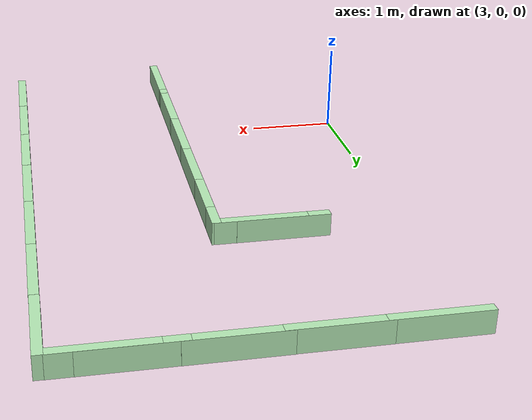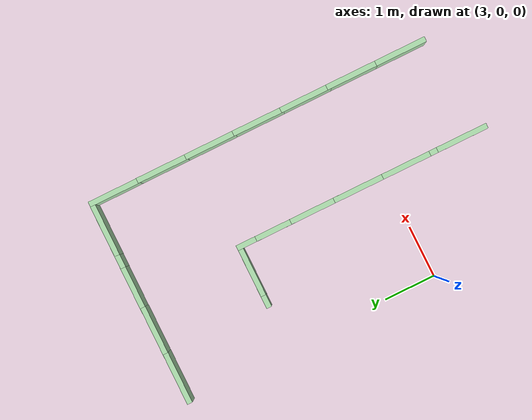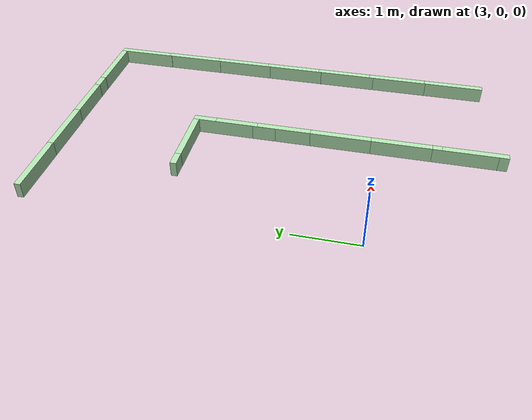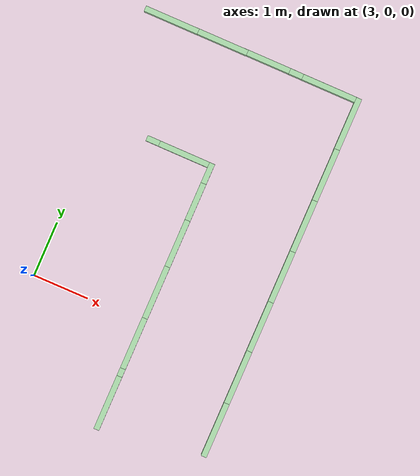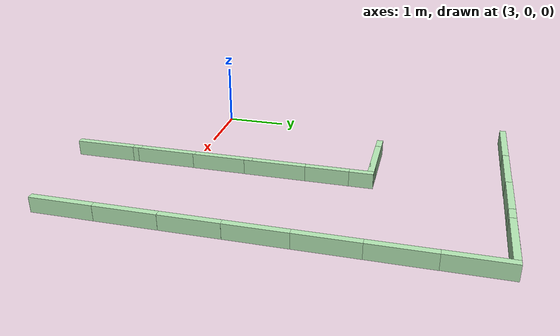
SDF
<sdf version="1.6">
 <world name="default">
  <model name="wall_100_25h_1_clone_7_clone_clone_0">
   <link name="link">
    <inertial>
     <mass>1</mass>
     <inertia>
      <ixx>0.166667</ixx>
      <ixy>0</ixy>
      <ixz>0</ixz>
      <iyy>0.166667</iyy>
      <iyz>0</iyz>
      <izz>0.166667</izz>
     </inertia>
    </inertial>
    <visual name="visual">
     <geometry><box><size>1 0.1 0.25</size></box></geometry>
     <material>
      <script><name>Gazebo/Grey</name><uri>file://media/materials/scripts/gazebo.material</uri></script>
      <ambient>0.3 0.5 0.3 1</ambient>
      <diffuse>0.7 0.9 0.7 1</diffuse>
      <specular>0.01 0.02 0.01 1</specular>
      <emissive>0 0 0 1</emissive>
      <lighting>1</lighting>
      <shader type="vertex"><normal_map>__default__</normal_map></shader>
     </material>
    </visual>
    <collision name="collision">
     <geometry><box><size>1 0.1 0.25</size></box></geometry>
     <surface>
      <friction>
       <ode><mu>1</mu><mu2>1</mu2><fdir1>0 0 0</fdir1><slip1>0</slip1><slip2>0</slip2></ode>
       <torsional>
        <coefficient>1</coefficient>
        <patch_radius>0</patch_radius>
        <surface_radius>0</surface_radius>
        <use_patch_radius>1</use_patch_radius>
        <ode><slip>0</slip></ode>
       </torsional>
      </friction>
      <bounce><restitution_coefficient>0</restitution_coefficient><threshold>1e+06</threshold></bounce>
      <contact>
       <collide_without_contact>0</collide_without_contact>
       <collide_without_contact_bitmask>1</collide_without_contact_bitmask>
       <collide_bitmask>1</collide_bitmask>
       <ode>
        <soft_cfm>0</soft_cfm>
        <soft_erp>0.2</soft_erp>
        <kp>1e+13</kp>
        <kd>1</kd>
        <max_vel>0.01</max_vel>
        <min_depth>0</min_depth>
       </ode>
       <bullet>
        <split_impulse>1</split_impulse>
        <split_impulse_penetration_threshold>-0.01</split_impulse_penetration_threshold>
        <soft_cfm>0</soft_cfm>
        <soft_erp>0.2</soft_erp>
        <kp>1e+13</kp>
        <kd>1</kd>
       </bullet>
      </contact>
     </surface>
    </collision>
   </link>
   <static>1</static>
   <pose>4.34397 2.95535 0.125 0.000404 -0 0</pose>
  </model>
  <model name="wall_100_25h_1_clone_9_clone_clone_0_clone_2_clone_clone_1">
   <link name="link">
    <inertial>
     <mass>1</mass>
     <inertia>
      <ixx>0.166667</ixx>
      <ixy>0</ixy>
      <ixz>0</ixz>
      <iyy>0.166667</iyy>
      <iyz>0</iyz>
      <izz>0.166667</izz>
     </inertia>
    </inertial>
    <visual name="visual">
     <geometry><box><size>1 0.1 0.25</size></box></geometry>
     <material>
      <script><name>Gazebo/Grey</name><uri>file://media/materials/scripts/gazebo.material</uri></script>
      <ambient>0.3 0.5 0.3 1</ambient>
      <diffuse>0.7 0.9 0.7 1</diffuse>
      <specular>0.01 0.02 0.01 1</specular>
      <emissive>0 0 0 1</emissive>
      <lighting>1</lighting>
      <shader type="vertex"><normal_map>__default__</normal_map></shader>
     </material>
    </visual>
    <collision name="collision">
     <geometry><box><size>1 0.1 0.25</size></box></geometry>
     <surface>
      <friction>
       <ode><mu>1</mu><mu2>1</mu2><fdir1>0 0 0</fdir1><slip1>0</slip1><slip2>0</slip2></ode>
       <torsional>
        <coefficient>1</coefficient>
        <patch_radius>0</patch_radius>
        <surface_radius>0</surface_radius>
        <use_patch_radius>1</use_patch_radius>
        <ode><slip>0</slip></ode>
       </torsional>
      </friction>
      <bounce><restitution_coefficient>0</restitution_coefficient><threshold>1e+06</threshold></bounce>
      <contact>
       <collide_without_contact>0</collide_without_contact>
       <collide_without_contact_bitmask>1</collide_without_contact_bitmask>
       <collide_bitmask>1</collide_bitmask>
       <ode>
        <soft_cfm>0</soft_cfm>
        <soft_erp>0.2</soft_erp>
        <kp>1e+13</kp>
        <kd>1</kd>
        <max_vel>0.01</max_vel>
        <min_depth>0</min_depth>
       </ode>
       <bullet>
        <split_impulse>1</split_impulse>
        <split_impulse_penetration_threshold>-0.01</split_impulse_penetration_threshold>
        <soft_cfm>0</soft_cfm>
        <soft_erp>0.2</soft_erp>
        <kp>1e+13</kp>
        <kd>1</kd>
       </bullet>
      </contact>
     </surface>
    </collision>
   </link>
   <static>1</static>
   <pose>5.05543 0.558635 0.125 0 0.000404 -1.57111</pose>
  </model>
  <model name="wall_100_25h_1_clone_9_clone_clone_0_clone_2_clone_clone_2">
   <link name="link">
    <inertial>
     <mass>1</mass>
     <inertia>
      <ixx>0.166667</ixx>
      <ixy>0</ixy>
      <ixz>0</ixz>
      <iyy>0.166667</iyy>
      <iyz>0</iyz>
      <izz>0.166667</izz>
     </inertia>
    </inertial>
    <visual name="visual">
     <geometry><box><size>1 0.1 0.25</size></box></geometry>
     <material>
      <script><name>Gazebo/Grey</name><uri>file://media/materials/scripts/gazebo.material</uri></script>
      <ambient>0.3 0.5 0.3 1</ambient>
      <diffuse>0.7 0.9 0.7 1</diffuse>
      <specular>0.01 0.02 0.01 1</specular>
      <emissive>0 0 0 1</emissive>
      <lighting>1</lighting>
      <shader type="vertex"><normal_map>__default__</normal_map></shader>
     </material>
    </visual>
    <collision name="collision">
     <geometry><box><size>1 0.1 0.25</size></box></geometry>
     <surface>
      <friction>
       <ode><mu>1</mu><mu2>1</mu2><fdir1>0 0 0</fdir1><slip1>0</slip1><slip2>0</slip2></ode>
       <torsional>
        <coefficient>1</coefficient>
        <patch_radius>0</patch_radius>
        <surface_radius>0</surface_radius>
        <use_patch_radius>1</use_patch_radius>
        <ode><slip>0</slip></ode>
       </torsional>
      </friction>
      <bounce><restitution_coefficient>0</restitution_coefficient><threshold>1e+06</threshold></bounce>
      <contact>
       <collide_without_contact>0</collide_without_contact>
       <collide_without_contact_bitmask>1</collide_without_contact_bitmask>
       <collide_bitmask>1</collide_bitmask>
       <ode>
        <soft_cfm>0</soft_cfm>
        <soft_erp>0.2</soft_erp>
        <kp>1e+13</kp>
        <kd>1</kd>
        <max_vel>0.01</max_vel>
        <min_depth>0</min_depth>
       </ode>
       <bullet>
        <split_impulse>1</split_impulse>
        <split_impulse_penetration_threshold>-0.01</split_impulse_penetration_threshold>
        <soft_cfm>0</soft_cfm>
        <soft_erp>0.2</soft_erp>
        <kp>1e+13</kp>
        <kd>1</kd>
       </bullet>
      </contact>
     </surface>
    </collision>
   </link>
   <static>1</static>
   <pose>5.05417 -0.411563 0.125 0 0.000404 -1.57111</pose>
  </model>
  <model name="wall_100_25h_1_clone_9_clone_clone_0_clone_2_clone_clone_3">
   <link name="link">
    <inertial>
     <mass>1</mass>
     <inertia>
      <ixx>0.166667</ixx>
      <ixy>0</ixy>
      <ixz>0</ixz>
      <iyy>0.166667</iyy>
      <iyz>0</iyz>
      <izz>0.166667</izz>
     </inertia>
    </inertial>
    <visual name="visual">
     <geometry><box><size>1 0.1 0.25</size></box></geometry>
     <material>
      <script><name>Gazebo/Grey</name><uri>file://media/materials/scripts/gazebo.material</uri></script>
      <ambient>0.3 0.5 0.3 1</ambient>
      <diffuse>0.7 0.9 0.7 1</diffuse>
      <specular>0.01 0.02 0.01 1</specular>
      <emissive>0 0 0 1</emissive>
      <lighting>1</lighting>
      <shader type="vertex"><normal_map>__default__</normal_map></shader>
     </material>
    </visual>
    <collision name="collision">
     <geometry><box><size>1 0.1 0.25</size></box></geometry>
     <surface>
      <friction>
       <ode><mu>1</mu><mu2>1</mu2><fdir1>0 0 0</fdir1><slip1>0</slip1><slip2>0</slip2></ode>
       <torsional>
        <coefficient>1</coefficient>
        <patch_radius>0</patch_radius>
        <surface_radius>0</surface_radius>
        <use_patch_radius>1</use_patch_radius>
        <ode><slip>0</slip></ode>
       </torsional>
      </friction>
      <bounce><restitution_coefficient>0</restitution_coefficient><threshold>1e+06</threshold></bounce>
      <contact>
       <collide_without_contact>0</collide_without_contact>
       <collide_without_contact_bitmask>1</collide_without_contact_bitmask>
       <collide_bitmask>1</collide_bitmask>
       <ode>
        <soft_cfm>0</soft_cfm>
        <soft_erp>0.2</soft_erp>
        <kp>1e+13</kp>
        <kd>1</kd>
        <max_vel>0.01</max_vel>
        <min_depth>0</min_depth>
       </ode>
       <bullet>
        <split_impulse>1</split_impulse>
        <split_impulse_penetration_threshold>-0.01</split_impulse_penetration_threshold>
        <soft_cfm>0</soft_cfm>
        <soft_erp>0.2</soft_erp>
        <kp>1e+13</kp>
        <kd>1</kd>
       </bullet>
      </contact>
     </surface>
    </collision>
   </link>
   <static>1</static>
   <pose>5.05346 -1.35987 0.125 0 0.000404 -1.57111</pose>
  </model>
  <model name="wall_100_25h_1_clone_9_clone_clone_0_clone_2_clone_clone_4">
   <link name="link">
    <inertial>
     <mass>1</mass>
     <inertia>
      <ixx>0.166667</ixx>
      <ixy>0</ixy>
      <ixz>0</ixz>
      <iyy>0.166667</iyy>
      <iyz>0</iyz>
      <izz>0.166667</izz>
     </inertia>
    </inertial>
    <visual name="visual">
     <geometry><box><size>1 0.1 0.25</size></box></geometry>
     <material>
      <script><name>Gazebo/Grey</name><uri>file://media/materials/scripts/gazebo.material</uri></script>
      <ambient>0.3 0.5 0.3 1</ambient>
      <diffuse>0.7 0.9 0.7 1</diffuse>
      <specular>0.01 0.02 0.01 1</specular>
      <emissive>0 0 0 1</emissive>
      <lighting>1</lighting>
      <shader type="vertex"><normal_map>__default__</normal_map></shader>
     </material>
    </visual>
    <collision name="collision">
     <geometry><box><size>1 0.1 0.25</size></box></geometry>
     <surface>
      <friction>
       <ode><mu>1</mu><mu2>1</mu2><fdir1>0 0 0</fdir1><slip1>0</slip1><slip2>0</slip2></ode>
       <torsional>
        <coefficient>1</coefficient>
        <patch_radius>0</patch_radius>
        <surface_radius>0</surface_radius>
        <use_patch_radius>1</use_patch_radius>
        <ode><slip>0</slip></ode>
       </torsional>
      </friction>
      <bounce><restitution_coefficient>0</restitution_coefficient><threshold>1e+06</threshold></bounce>
      <contact>
       <collide_without_contact>0</collide_without_contact>
       <collide_without_contact_bitmask>1</collide_without_contact_bitmask>
       <collide_bitmask>1</collide_bitmask>
       <ode>
        <soft_cfm>0</soft_cfm>
        <soft_erp>0.2</soft_erp>
        <kp>1e+13</kp>
        <kd>1</kd>
        <max_vel>0.01</max_vel>
        <min_depth>0</min_depth>
       </ode>
       <bullet>
        <split_impulse>1</split_impulse>
        <split_impulse_penetration_threshold>-0.01</split_impulse_penetration_threshold>
        <soft_cfm>0</soft_cfm>
        <soft_erp>0.2</soft_erp>
        <kp>1e+13</kp>
        <kd>1</kd>
       </bullet>
      </contact>
     </surface>
    </collision>
   </link>
   <static>1</static>
   <pose>5.05361 -1.5074 0.125 0 0.000404 -1.57111</pose>
  </model>
  <model name="wall_100_25h_1_clone_9_clone_clone_0_clone_2_clone_clone_1_clone">
   <link name="link">
    <inertial>
     <mass>1</mass>
     <inertia>
      <ixx>0.166667</ixx>
      <ixy>0</ixy>
      <ixz>0</ixz>
      <iyy>0.166667</iyy>
      <iyz>0</iyz>
      <izz>0.166667</izz>
     </inertia>
    </inertial>
    <visual name="visual">
     <geometry><box><size>1 0.1 0.25</size></box></geometry>
     <material>
      <script><name>Gazebo/Grey</name><uri>file://media/materials/scripts/gazebo.material</uri></script>
      <ambient>0.3 0.5 0.3 1</ambient>
      <diffuse>0.7 0.9 0.7 1</diffuse>
      <specular>0.01 0.02 0.01 1</specular>
      <emissive>0 0 0 1</emissive>
      <lighting>1</lighting>
      <shader type="vertex"><normal_map>__default__</normal_map></shader>
     </material>
    </visual>
    <collision name="collision">
     <geometry><box><size>1 0.1 0.25</size></box></geometry>
     <surface>
      <friction>
       <ode><mu>1</mu><mu2>1</mu2><fdir1>0 0 0</fdir1><slip1>0</slip1><slip2>0</slip2></ode>
       <torsional>
        <coefficient>1</coefficient>
        <patch_radius>0</patch_radius>
        <surface_radius>0</surface_radius>
        <use_patch_radius>1</use_patch_radius>
        <ode><slip>0</slip></ode>
       </torsional>
      </friction>
      <bounce><restitution_coefficient>0</restitution_coefficient><threshold>1e+06</threshold></bounce>
      <contact>
       <collide_without_contact>0</collide_without_contact>
       <collide_without_contact_bitmask>1</collide_without_contact_bitmask>
       <collide_bitmask>1</collide_bitmask>
       <ode>
        <soft_cfm>0</soft_cfm>
        <soft_erp>0.2</soft_erp>
        <kp>1e+13</kp>
        <kd>1</kd>
        <max_vel>0.01</max_vel>
        <min_depth>0</min_depth>
       </ode>
       <bullet>
        <split_impulse>1</split_impulse>
        <split_impulse_penetration_threshold>-0.01</split_impulse_penetration_threshold>
        <soft_cfm>0</soft_cfm>
        <soft_erp>0.2</soft_erp>
        <kp>1e+13</kp>
        <kd>1</kd>
       </bullet>
      </contact>
     </surface>
    </collision>
   </link>
   <static>1</static>
   <pose>5.05685 1.43097 0.125 0 0.000404 -1.57111</pose>
  </model>
  <model name="wall_100_25h_1_clone_9_clone_clone_0_clone_2_clone_clone_1_clone_0">
   <link name="link">
    <inertial>
     <mass>1</mass>
     <inertia>
      <ixx>0.166667</ixx>
      <ixy>0</ixy>
      <ixz>0</ixz>
      <iyy>0.166667</iyy>
      <iyz>0</iyz>
      <izz>0.166667</izz>
     </inertia>
    </inertial>
    <visual name="visual">
     <geometry><box><size>1 0.1 0.25</size></box></geometry>
     <material>
      <script><name>Gazebo/Grey</name><uri>file://media/materials/scripts/gazebo.material</uri></script>
      <ambient>0.3 0.5 0.3 1</ambient>
      <diffuse>0.7 0.9 0.7 1</diffuse>
      <specular>0.01 0.02 0.01 1</specular>
      <emissive>0 0 0 1</emissive>
      <lighting>1</lighting>
      <shader type="vertex"><normal_map>__default__</normal_map></shader>
     </material>
    </visual>
    <collision name="collision">
     <geometry><box><size>1 0.1 0.25</size></box></geometry>
     <surface>
      <friction>
       <ode><mu>1</mu><mu2>1</mu2><fdir1>0 0 0</fdir1><slip1>0</slip1><slip2>0</slip2></ode>
       <torsional>
        <coefficient>1</coefficient>
        <patch_radius>0</patch_radius>
        <surface_radius>0</surface_radius>
        <use_patch_radius>1</use_patch_radius>
        <ode><slip>0</slip></ode>
       </torsional>
      </friction>
      <bounce><restitution_coefficient>0</restitution_coefficient><threshold>1e+06</threshold></bounce>
      <contact>
       <collide_without_contact>0</collide_without_contact>
       <collide_without_contact_bitmask>1</collide_without_contact_bitmask>
       <collide_bitmask>1</collide_bitmask>
       <ode>
        <soft_cfm>0</soft_cfm>
        <soft_erp>0.2</soft_erp>
        <kp>1e+13</kp>
        <kd>1</kd>
        <max_vel>0.01</max_vel>
        <min_depth>0</min_depth>
       </ode>
       <bullet>
        <split_impulse>1</split_impulse>
        <split_impulse_penetration_threshold>-0.01</split_impulse_penetration_threshold>
        <soft_cfm>0</soft_cfm>
        <soft_erp>0.2</soft_erp>
        <kp>1e+13</kp>
        <kd>1</kd>
       </bullet>
      </contact>
     </surface>
    </collision>
   </link>
   <static>1</static>
   <pose>5.05616 2.12575 0.125 0 0.000404 -1.57111</pose>
  </model>
  <model name="wall_100_25h_1_clone_9_clone_clone_0_clone_2_clone_clone_1_clone_1">
   <link name="link">
    <inertial>
     <mass>1</mass>
     <inertia>
      <ixx>0.166667</ixx>
      <ixy>0</ixy>
      <ixz>0</ixz>
      <iyy>0.166667</iyy>
      <iyz>0</iyz>
      <izz>0.166667</izz>
     </inertia>
    </inertial>
    <visual name="visual">
     <geometry><box><size>1 0.1 0.25</size></box></geometry>
     <material>
      <script><name>Gazebo/Grey</name><uri>file://media/materials/scripts/gazebo.material</uri></script>
      <ambient>0.3 0.5 0.3 1</ambient>
      <diffuse>0.7 0.9 0.7 1</diffuse>
      <specular>0.01 0.02 0.01 1</specular>
      <emissive>0 0 0 1</emissive>
      <lighting>1</lighting>
      <shader type="vertex"><normal_map>__default__</normal_map></shader>
     </material>
    </visual>
    <collision name="collision">
     <geometry><box><size>1 0.1 0.25</size></box></geometry>
     <surface>
      <friction>
       <ode><mu>1</mu><mu2>1</mu2><fdir1>0 0 0</fdir1><slip1>0</slip1><slip2>0</slip2></ode>
       <torsional>
        <coefficient>1</coefficient>
        <patch_radius>0</patch_radius>
        <surface_radius>0</surface_radius>
        <use_patch_radius>1</use_patch_radius>
        <ode><slip>0</slip></ode>
       </torsional>
      </friction>
      <bounce><restitution_coefficient>0</restitution_coefficient><threshold>1e+06</threshold></bounce>
      <contact>
       <collide_without_contact>0</collide_without_contact>
       <collide_without_contact_bitmask>1</collide_without_contact_bitmask>
       <collide_bitmask>1</collide_bitmask>
       <ode>
        <soft_cfm>0</soft_cfm>
        <soft_erp>0.2</soft_erp>
        <kp>1e+13</kp>
        <kd>1</kd>
        <max_vel>0.01</max_vel>
        <min_depth>0</min_depth>
       </ode>
       <bullet>
        <split_impulse>1</split_impulse>
        <split_impulse_penetration_threshold>-0.01</split_impulse_penetration_threshold>
        <soft_cfm>0</soft_cfm>
        <soft_erp>0.2</soft_erp>
        <kp>1e+13</kp>
        <kd>1</kd>
       </bullet>
      </contact>
     </surface>
    </collision>
   </link>
   <static>1</static>
   <pose>5.05581 2.50375 0.125 0 0.000404 -1.57111</pose>
  </model>
  <model name="wall_100_25h_1_clone_7_clone_clone_0_clone">
   <link name="link">
    <inertial>
     <mass>1</mass>
     <inertia>
      <ixx>0.166667</ixx>
      <ixy>0</ixy>
      <ixz>0</ixz>
      <iyy>0.166667</iyy>
      <iyz>0</iyz>
      <izz>0.166667</izz>
     </inertia>
    </inertial>
    <visual name="visual">
     <geometry><box><size>1 0.1 0.25</size></box></geometry>
     <material>
      <script><name>Gazebo/Grey</name><uri>file://media/materials/scripts/gazebo.material</uri></script>
      <ambient>0.3 0.5 0.3 1</ambient>
      <diffuse>0.7 0.9 0.7 1</diffuse>
      <specular>0.01 0.02 0.01 1</specular>
      <emissive>0 0 0 1</emissive>
      <lighting>1</lighting>
      <shader type="vertex"><normal_map>__default__</normal_map></shader>
     </material>
    </visual>
    <collision name="collision">
     <geometry><box><size>1 0.1 0.25</size></box></geometry>
     <surface>
      <friction>
       <ode><mu>1</mu><mu2>1</mu2><fdir1>0 0 0</fdir1><slip1>0</slip1><slip2>0</slip2></ode>
       <torsional>
        <coefficient>1</coefficient>
        <patch_radius>0</patch_radius>
        <surface_radius>0</surface_radius>
        <use_patch_radius>1</use_patch_radius>
        <ode><slip>0</slip></ode>
       </torsional>
      </friction>
      <bounce><restitution_coefficient>0</restitution_coefficient><threshold>1e+06</threshold></bounce>
      <contact>
       <collide_without_contact>0</collide_without_contact>
       <collide_without_contact_bitmask>1</collide_without_contact_bitmask>
       <collide_bitmask>1</collide_bitmask>
       <ode>
        <soft_cfm>0</soft_cfm>
        <soft_erp>0.2</soft_erp>
        <kp>1e+13</kp>
        <kd>1</kd>
        <max_vel>0.01</max_vel>
        <min_depth>0</min_depth>
       </ode>
       <bullet>
        <split_impulse>1</split_impulse>
        <split_impulse_penetration_threshold>-0.01</split_impulse_penetration_threshold>
        <soft_cfm>0</soft_cfm>
        <soft_erp>0.2</soft_erp>
        <kp>1e+13</kp>
        <kd>1</kd>
       </bullet>
      </contact>
     </surface>
    </collision>
   </link>
   <static>1</static>
   <pose>4.58203 2.9544 0.125 0.000404 -0 0</pose>
  </model>
  <model name="wall_100_25h_1_clone_7_clone_clone_5">
   <link name="link">
    <inertial>
     <mass>1</mass>
     <inertia>
      <ixx>0.166667</ixx>
      <ixy>0</ixy>
      <ixz>0</ixz>
      <iyy>0.166667</iyy>
      <iyz>0</iyz>
      <izz>0.166667</izz>
     </inertia>
    </inertial>
    <visual name="visual">
     <geometry><box><size>1 0.1 0.25</size></box></geometry>
     <material>
      <script><name>Gazebo/Grey</name><uri>file://media/materials/scripts/gazebo.material</uri></script>
      <ambient>0.3 0.5 0.3 1</ambient>
      <diffuse>0.7 0.9 0.7 1</diffuse>
      <specular>0.01 0.02 0.01 1</specular>
      <emissive>0 0 0 1</emissive>
      <lighting>1</lighting>
      <shader type="vertex"><normal_map>__default__</normal_map></shader>
     </material>
    </visual>
    <collision name="collision">
     <geometry><box><size>1 0.1 0.25</size></box></geometry>
     <surface>
      <friction>
       <ode><mu>1</mu><mu2>1</mu2><fdir1>0 0 0</fdir1><slip1>0</slip1><slip2>0</slip2></ode>
       <torsional>
        <coefficient>1</coefficient>
        <patch_radius>0</patch_radius>
        <surface_radius>0</surface_radius>
        <use_patch_radius>1</use_patch_radius>
        <ode><slip>0</slip></ode>
       </torsional>
      </friction>
      <bounce><restitution_coefficient>0</restitution_coefficient><threshold>1e+06</threshold></bounce>
      <contact>
       <collide_without_contact>0</collide_without_contact>
       <collide_without_contact_bitmask>1</collide_without_contact_bitmask>
       <collide_bitmask>1</collide_bitmask>
       <ode>
        <soft_cfm>0</soft_cfm>
        <soft_erp>0.2</soft_erp>
        <kp>1e+13</kp>
        <kd>1</kd>
        <max_vel>0.01</max_vel>
        <min_depth>0</min_depth>
       </ode>
       <bullet>
        <split_impulse>1</split_impulse>
        <split_impulse_penetration_threshold>-0.01</split_impulse_penetration_threshold>
        <soft_cfm>0</soft_cfm>
        <soft_erp>0.2</soft_erp>
        <kp>1e+13</kp>
        <kd>1</kd>
       </bullet>
      </contact>
     </surface>
    </collision>
   </link>
   <static>1</static>
   <pose>3.42337 4.99488 0.125 0.000404 -0 0</pose>
  </model>
  <model name="wall_100_25h_1_clone_7_clone_clone_6">
   <link name="link">
    <inertial>
     <mass>1</mass>
     <inertia>
      <ixx>0.166667</ixx>
      <ixy>0</ixy>
      <ixz>0</ixz>
      <iyy>0.166667</iyy>
      <iyz>0</iyz>
      <izz>0.166667</izz>
     </inertia>
    </inertial>
    <visual name="visual">
     <geometry><box><size>1 0.1 0.25</size></box></geometry>
     <material>
      <script><name>Gazebo/Grey</name><uri>file://media/materials/scripts/gazebo.material</uri></script>
      <ambient>0.3 0.5 0.3 1</ambient>
      <diffuse>0.7 0.9 0.7 1</diffuse>
      <specular>0.01 0.02 0.01 1</specular>
      <emissive>0 0 0 1</emissive>
      <lighting>1</lighting>
      <shader type="vertex"><normal_map>__default__</normal_map></shader>
     </material>
    </visual>
    <collision name="collision">
     <geometry><box><size>1 0.1 0.25</size></box></geometry>
     <surface>
      <friction>
       <ode><mu>1</mu><mu2>1</mu2><fdir1>0 0 0</fdir1><slip1>0</slip1><slip2>0</slip2></ode>
       <torsional>
        <coefficient>1</coefficient>
        <patch_radius>0</patch_radius>
        <surface_radius>0</surface_radius>
        <use_patch_radius>1</use_patch_radius>
        <ode><slip>0</slip></ode>
       </torsional>
      </friction>
      <bounce><restitution_coefficient>0</restitution_coefficient><threshold>1e+06</threshold></bounce>
      <contact>
       <collide_without_contact>0</collide_without_contact>
       <collide_without_contact_bitmask>1</collide_without_contact_bitmask>
       <collide_bitmask>1</collide_bitmask>
       <ode>
        <soft_cfm>0</soft_cfm>
        <soft_erp>0.2</soft_erp>
        <kp>1e+13</kp>
        <kd>1</kd>
        <max_vel>0.01</max_vel>
        <min_depth>0</min_depth>
       </ode>
       <bullet>
        <split_impulse>1</split_impulse>
        <split_impulse_penetration_threshold>-0.01</split_impulse_penetration_threshold>
        <soft_cfm>0</soft_cfm>
        <soft_erp>0.2</soft_erp>
        <kp>1e+13</kp>
        <kd>1</kd>
       </bullet>
      </contact>
     </surface>
    </collision>
   </link>
   <static>1</static>
   <pose>4.34747 4.99643 0.125 0.000404 -0 0</pose>
  </model>
  <model name="wall_100_25h_1_clone_7_clone_clone_7">
   <link name="link">
    <inertial>
     <mass>1</mass>
     <inertia>
      <ixx>0.166667</ixx>
      <ixy>0</ixy>
      <ixz>0</ixz>
      <iyy>0.166667</iyy>
      <iyz>0</iyz>
      <izz>0.166667</izz>
     </inertia>
    </inertial>
    <visual name="visual">
     <geometry><box><size>1 0.1 0.25</size></box></geometry>
     <material>
      <script><name>Gazebo/Grey</name><uri>file://media/materials/scripts/gazebo.material</uri></script>
      <ambient>0.3 0.5 0.3 1</ambient>
      <diffuse>0.7 0.9 0.7 1</diffuse>
      <specular>0.01 0.02 0.01 1</specular>
      <emissive>0 0 0 1</emissive>
      <lighting>1</lighting>
      <shader type="vertex"><normal_map>__default__</normal_map></shader>
     </material>
    </visual>
    <collision name="collision">
     <geometry><box><size>1 0.1 0.25</size></box></geometry>
     <surface>
      <friction>
       <ode><mu>1</mu><mu2>1</mu2><fdir1>0 0 0</fdir1><slip1>0</slip1><slip2>0</slip2></ode>
       <torsional>
        <coefficient>1</coefficient>
        <patch_radius>0</patch_radius>
        <surface_radius>0</surface_radius>
        <use_patch_radius>1</use_patch_radius>
        <ode><slip>0</slip></ode>
       </torsional>
      </friction>
      <bounce><restitution_coefficient>0</restitution_coefficient><threshold>1e+06</threshold></bounce>
      <contact>
       <collide_without_contact>0</collide_without_contact>
       <collide_without_contact_bitmask>1</collide_without_contact_bitmask>
       <collide_bitmask>1</collide_bitmask>
       <ode>
        <soft_cfm>0</soft_cfm>
        <soft_erp>0.2</soft_erp>
        <kp>1e+13</kp>
        <kd>1</kd>
        <max_vel>0.01</max_vel>
        <min_depth>0</min_depth>
       </ode>
       <bullet>
        <split_impulse>1</split_impulse>
        <split_impulse_penetration_threshold>-0.01</split_impulse_penetration_threshold>
        <soft_cfm>0</soft_cfm>
        <soft_erp>0.2</soft_erp>
        <kp>1e+13</kp>
        <kd>1</kd>
       </bullet>
      </contact>
     </surface>
    </collision>
   </link>
   <static>1</static>
   <pose>5.24082 4.99982 0.125 0.000404 -0 0</pose>
  </model>
  <model name="wall_100_25h_1_clone_7_clone_clone_8">
   <link name="link">
    <inertial>
     <mass>1</mass>
     <inertia>
      <ixx>0.166667</ixx>
      <ixy>0</ixy>
      <ixz>0</ixz>
      <iyy>0.166667</iyy>
      <iyz>0</iyz>
      <izz>0.166667</izz>
     </inertia>
    </inertial>
    <visual name="visual">
     <geometry><box><size>1 0.1 0.25</size></box></geometry>
     <material>
      <script><name>Gazebo/Grey</name><uri>file://media/materials/scripts/gazebo.material</uri></script>
      <ambient>0.3 0.5 0.3 1</ambient>
      <diffuse>0.7 0.9 0.7 1</diffuse>
      <specular>0.01 0.02 0.01 1</specular>
      <emissive>0 0 0 1</emissive>
      <lighting>1</lighting>
      <shader type="vertex"><normal_map>__default__</normal_map></shader>
     </material>
    </visual>
    <collision name="collision">
     <geometry><box><size>1 0.1 0.25</size></box></geometry>
     <surface>
      <friction>
       <ode><mu>1</mu><mu2>1</mu2><fdir1>0 0 0</fdir1><slip1>0</slip1><slip2>0</slip2></ode>
       <torsional>
        <coefficient>1</coefficient>
        <patch_radius>0</patch_radius>
        <surface_radius>0</surface_radius>
        <use_patch_radius>1</use_patch_radius>
        <ode><slip>0</slip></ode>
       </torsional>
      </friction>
      <bounce><restitution_coefficient>0</restitution_coefficient><threshold>1e+06</threshold></bounce>
      <contact>
       <collide_without_contact>0</collide_without_contact>
       <collide_without_contact_bitmask>1</collide_without_contact_bitmask>
       <collide_bitmask>1</collide_bitmask>
       <ode>
        <soft_cfm>0</soft_cfm>
        <soft_erp>0.2</soft_erp>
        <kp>1e+13</kp>
        <kd>1</kd>
        <max_vel>0.01</max_vel>
        <min_depth>0</min_depth>
       </ode>
       <bullet>
        <split_impulse>1</split_impulse>
        <split_impulse_penetration_threshold>-0.01</split_impulse_penetration_threshold>
        <soft_cfm>0</soft_cfm>
        <soft_erp>0.2</soft_erp>
        <kp>1e+13</kp>
        <kd>1</kd>
       </bullet>
      </contact>
     </surface>
    </collision>
   </link>
   <static>1</static>
   <pose>6.14414 4.99843 0.125 0.000404 -0 0</pose>
  </model>
  <model name="wall_100_25h_1_clone_7_clone_clone_9">
   <link name="link">
    <inertial>
     <mass>1</mass>
     <inertia>
      <ixx>0.166667</ixx>
      <ixy>0</ixy>
      <ixz>0</ixz>
      <iyy>0.166667</iyy>
      <iyz>0</iyz>
      <izz>0.166667</izz>
     </inertia>
    </inertial>
    <visual name="visual">
     <geometry><box><size>1 0.1 0.25</size></box></geometry>
     <material>
      <script><name>Gazebo/Grey</name><uri>file://media/materials/scripts/gazebo.material</uri></script>
      <ambient>0.3 0.5 0.3 1</ambient>
      <diffuse>0.7 0.9 0.7 1</diffuse>
      <specular>0.01 0.02 0.01 1</specular>
      <emissive>0 0 0 1</emissive>
      <lighting>1</lighting>
      <shader type="vertex"><normal_map>__default__</normal_map></shader>
     </material>
    </visual>
    <collision name="collision">
     <geometry><box><size>1 0.1 0.25</size></box></geometry>
     <surface>
      <friction>
       <ode><mu>1</mu><mu2>1</mu2><fdir1>0 0 0</fdir1><slip1>0</slip1><slip2>0</slip2></ode>
       <torsional>
        <coefficient>1</coefficient>
        <patch_radius>0</patch_radius>
        <surface_radius>0</surface_radius>
        <use_patch_radius>1</use_patch_radius>
        <ode><slip>0</slip></ode>
       </torsional>
      </friction>
      <bounce><restitution_coefficient>0</restitution_coefficient><threshold>1e+06</threshold></bounce>
      <contact>
       <collide_without_contact>0</collide_without_contact>
       <collide_without_contact_bitmask>1</collide_without_contact_bitmask>
       <collide_bitmask>1</collide_bitmask>
       <ode>
        <soft_cfm>0</soft_cfm>
        <soft_erp>0.2</soft_erp>
        <kp>1e+13</kp>
        <kd>1</kd>
        <max_vel>0.01</max_vel>
        <min_depth>0</min_depth>
       </ode>
       <bullet>
        <split_impulse>1</split_impulse>
        <split_impulse_penetration_threshold>-0.01</split_impulse_penetration_threshold>
        <soft_cfm>0</soft_cfm>
        <soft_erp>0.2</soft_erp>
        <kp>1e+13</kp>
        <kd>1</kd>
       </bullet>
      </contact>
     </surface>
    </collision>
   </link>
   <static>1</static>
   <pose>6.39002 4.99736 0.125 0.000404 -0 0</pose>
  </model>
  <model name="wall_100_25h_1_clone_9_clone_clone_0_clone_2_clone_clone_1_clone_1_clone">
   <link name="link">
    <inertial>
     <mass>1</mass>
     <inertia>
      <ixx>0.166667</ixx>
      <ixy>0</ixy>
      <ixz>0</ixz>
      <iyy>0.166667</iyy>
      <iyz>0</iyz>
      <izz>0.166667</izz>
     </inertia>
    </inertial>
    <visual name="visual">
     <geometry><box><size>1 0.1 0.25</size></box></geometry>
     <material>
      <script><name>Gazebo/Grey</name><uri>file://media/materials/scripts/gazebo.material</uri></script>
      <ambient>0.3 0.5 0.3 1</ambient>
      <diffuse>0.7 0.9 0.7 1</diffuse>
      <specular>0.01 0.02 0.01 1</specular>
      <emissive>0 0 0 1</emissive>
      <lighting>1</lighting>
      <shader type="vertex"><normal_map>__default__</normal_map></shader>
     </material>
    </visual>
    <collision name="collision">
     <geometry><box><size>1 0.1 0.25</size></box></geometry>
     <surface>
      <friction>
       <ode><mu>1</mu><mu2>1</mu2><fdir1>0 0 0</fdir1><slip1>0</slip1><slip2>0</slip2></ode>
       <torsional>
        <coefficient>1</coefficient>
        <patch_radius>0</patch_radius>
        <surface_radius>0</surface_radius>
        <use_patch_radius>1</use_patch_radius>
        <ode><slip>0</slip></ode>
       </torsional>
      </friction>
      <bounce><restitution_coefficient>0</restitution_coefficient><threshold>1e+06</threshold></bounce>
      <contact>
       <collide_without_contact>0</collide_without_contact>
       <collide_without_contact_bitmask>1</collide_without_contact_bitmask>
       <collide_bitmask>1</collide_bitmask>
       <ode>
        <soft_cfm>0</soft_cfm>
        <soft_erp>0.2</soft_erp>
        <kp>1e+13</kp>
        <kd>1</kd>
        <max_vel>0.01</max_vel>
        <min_depth>0</min_depth>
       </ode>
       <bullet>
        <split_impulse>1</split_impulse>
        <split_impulse_penetration_threshold>-0.01</split_impulse_penetration_threshold>
        <soft_cfm>0</soft_cfm>
        <soft_erp>0.2</soft_erp>
        <kp>1e+13</kp>
        <kd>1</kd>
       </bullet>
      </contact>
     </surface>
    </collision>
   </link>
   <static>1</static>
   <pose>6.93352 4.54504 0.125 0 0.000404 -1.57111</pose>
  </model>
  <model name="wall_100_25h_1_clone_9_clone_clone_0_clone_2_clone_clone_1_clone_1_clone_0">
   <link name="link">
    <inertial>
     <mass>1</mass>
     <inertia>
      <ixx>0.166667</ixx>
      <ixy>0</ixy>
      <ixz>0</ixz>
      <iyy>0.166667</iyy>
      <iyz>0</iyz>
      <izz>0.166667</izz>
     </inertia>
    </inertial>
    <visual name="visual">
     <geometry><box><size>1 0.1 0.25</size></box></geometry>
     <material>
      <script><name>Gazebo/Grey</name><uri>file://media/materials/scripts/gazebo.material</uri></script>
      <ambient>0.3 0.5 0.3 1</ambient>
      <diffuse>0.7 0.9 0.7 1</diffuse>
      <specular>0.01 0.02 0.01 1</specular>
      <emissive>0 0 0 1</emissive>
      <lighting>1</lighting>
      <shader type="vertex"><normal_map>__default__</normal_map></shader>
     </material>
    </visual>
    <collision name="collision">
     <geometry><box><size>1 0.1 0.25</size></box></geometry>
     <surface>
      <friction>
       <ode><mu>1</mu><mu2>1</mu2><fdir1>0 0 0</fdir1><slip1>0</slip1><slip2>0</slip2></ode>
       <torsional>
        <coefficient>1</coefficient>
        <patch_radius>0</patch_radius>
        <surface_radius>0</surface_radius>
        <use_patch_radius>1</use_patch_radius>
        <ode><slip>0</slip></ode>
       </torsional>
      </friction>
      <bounce><restitution_coefficient>0</restitution_coefficient><threshold>1e+06</threshold></bounce>
      <contact>
       <collide_without_contact>0</collide_without_contact>
       <collide_without_contact_bitmask>1</collide_without_contact_bitmask>
       <collide_bitmask>1</collide_bitmask>
       <ode>
        <soft_cfm>0</soft_cfm>
        <soft_erp>0.2</soft_erp>
        <kp>1e+13</kp>
        <kd>1</kd>
        <max_vel>0.01</max_vel>
        <min_depth>0</min_depth>
       </ode>
       <bullet>
        <split_impulse>1</split_impulse>
        <split_impulse_penetration_threshold>-0.01</split_impulse_penetration_threshold>
        <soft_cfm>0</soft_cfm>
        <soft_erp>0.2</soft_erp>
        <kp>1e+13</kp>
        <kd>1</kd>
       </bullet>
      </contact>
     </surface>
    </collision>
   </link>
   <static>1</static>
   <pose>6.93655 3.58462 0.125 0 0.000404 -1.57111</pose>
  </model>
  <model name="wall_100_25h_1_clone_9_clone_clone_0_clone_2_clone_clone_1_clone_1_clone_1">
   <link name="link">
    <inertial>
     <mass>1</mass>
     <inertia>
      <ixx>0.166667</ixx>
      <ixy>0</ixy>
      <ixz>0</ixz>
      <iyy>0.166667</iyy>
      <iyz>0</iyz>
      <izz>0.166667</izz>
     </inertia>
    </inertial>
    <visual name="visual">
     <geometry><box><size>1 0.1 0.25</size></box></geometry>
     <material>
      <script><name>Gazebo/Grey</name><uri>file://media/materials/scripts/gazebo.material</uri></script>
      <ambient>0.3 0.5 0.3 1</ambient>
      <diffuse>0.7 0.9 0.7 1</diffuse>
      <specular>0.01 0.02 0.01 1</specular>
      <emissive>0 0 0 1</emissive>
      <lighting>1</lighting>
      <shader type="vertex"><normal_map>__default__</normal_map></shader>
     </material>
    </visual>
    <collision name="collision">
     <geometry><box><size>1 0.1 0.25</size></box></geometry>
     <surface>
      <friction>
       <ode><mu>1</mu><mu2>1</mu2><fdir1>0 0 0</fdir1><slip1>0</slip1><slip2>0</slip2></ode>
       <torsional>
        <coefficient>1</coefficient>
        <patch_radius>0</patch_radius>
        <surface_radius>0</surface_radius>
        <use_patch_radius>1</use_patch_radius>
        <ode><slip>0</slip></ode>
       </torsional>
      </friction>
      <bounce><restitution_coefficient>0</restitution_coefficient><threshold>1e+06</threshold></bounce>
      <contact>
       <collide_without_contact>0</collide_without_contact>
       <collide_without_contact_bitmask>1</collide_without_contact_bitmask>
       <collide_bitmask>1</collide_bitmask>
       <ode>
        <soft_cfm>0</soft_cfm>
        <soft_erp>0.2</soft_erp>
        <kp>1e+13</kp>
        <kd>1</kd>
        <max_vel>0.01</max_vel>
        <min_depth>0</min_depth>
       </ode>
       <bullet>
        <split_impulse>1</split_impulse>
        <split_impulse_penetration_threshold>-0.01</split_impulse_penetration_threshold>
        <soft_cfm>0</soft_cfm>
        <soft_erp>0.2</soft_erp>
        <kp>1e+13</kp>
        <kd>1</kd>
       </bullet>
      </contact>
     </surface>
    </collision>
   </link>
   <static>1</static>
   <pose>6.93746 2.62004 0.125 0 0.000404 -1.57111</pose>
  </model>
  <model name="wall_100_25h_1_clone_9_clone_clone_0_clone_2_clone_clone_1_clone_1_clone_2">
   <link name="link">
    <inertial>
     <mass>1</mass>
     <inertia>
      <ixx>0.166667</ixx>
      <ixy>0</ixy>
      <ixz>0</ixz>
      <iyy>0.166667</iyy>
      <iyz>0</iyz>
      <izz>0.166667</izz>
     </inertia>
    </inertial>
    <visual name="visual">
     <geometry><box><size>1 0.1 0.25</size></box></geometry>
     <material>
      <script><name>Gazebo/Grey</name><uri>file://media/materials/scripts/gazebo.material</uri></script>
      <ambient>0.3 0.5 0.3 1</ambient>
      <diffuse>0.7 0.9 0.7 1</diffuse>
      <specular>0.01 0.02 0.01 1</specular>
      <emissive>0 0 0 1</emissive>
      <lighting>1</lighting>
      <shader type="vertex"><normal_map>__default__</normal_map></shader>
     </material>
    </visual>
    <collision name="collision">
     <geometry><box><size>1 0.1 0.25</size></box></geometry>
     <surface>
      <friction>
       <ode><mu>1</mu><mu2>1</mu2><fdir1>0 0 0</fdir1><slip1>0</slip1><slip2>0</slip2></ode>
       <torsional>
        <coefficient>1</coefficient>
        <patch_radius>0</patch_radius>
        <surface_radius>0</surface_radius>
        <use_patch_radius>1</use_patch_radius>
        <ode><slip>0</slip></ode>
       </torsional>
      </friction>
      <bounce><restitution_coefficient>0</restitution_coefficient><threshold>1e+06</threshold></bounce>
      <contact>
       <collide_without_contact>0</collide_without_contact>
       <collide_without_contact_bitmask>1</collide_without_contact_bitmask>
       <collide_bitmask>1</collide_bitmask>
       <ode>
        <soft_cfm>0</soft_cfm>
        <soft_erp>0.2</soft_erp>
        <kp>1e+13</kp>
        <kd>1</kd>
        <max_vel>0.01</max_vel>
        <min_depth>0</min_depth>
       </ode>
       <bullet>
        <split_impulse>1</split_impulse>
        <split_impulse_penetration_threshold>-0.01</split_impulse_penetration_threshold>
        <soft_cfm>0</soft_cfm>
        <soft_erp>0.2</soft_erp>
        <kp>1e+13</kp>
        <kd>1</kd>
       </bullet>
      </contact>
     </surface>
    </collision>
   </link>
   <static>1</static>
   <pose>6.93839 1.66012 0.125 0 0.000404 -1.57111</pose>
  </model>
  <model name="wall_100_25h_1_clone_9_clone_clone_0_clone_2_clone_clone_1_clone_1_clone_3">
   <link name="link">
    <inertial>
     <mass>1</mass>
     <inertia>
      <ixx>0.166667</ixx>
      <ixy>0</ixy>
      <ixz>0</ixz>
      <iyy>0.166667</iyy>
      <iyz>0</iyz>
      <izz>0.166667</izz>
     </inertia>
    </inertial>
    <visual name="visual">
     <geometry><box><size>1 0.1 0.25</size></box></geometry>
     <material>
      <script><name>Gazebo/Grey</name><uri>file://media/materials/scripts/gazebo.material</uri></script>
      <ambient>0.3 0.5 0.3 1</ambient>
      <diffuse>0.7 0.9 0.7 1</diffuse>
      <specular>0.01 0.02 0.01 1</specular>
      <emissive>0 0 0 1</emissive>
      <lighting>1</lighting>
      <shader type="vertex"><normal_map>__default__</normal_map></shader>
     </material>
    </visual>
    <collision name="collision">
     <geometry><box><size>1 0.1 0.25</size></box></geometry>
     <surface>
      <friction>
       <ode><mu>1</mu><mu2>1</mu2><fdir1>0 0 0</fdir1><slip1>0</slip1><slip2>0</slip2></ode>
       <torsional>
        <coefficient>1</coefficient>
        <patch_radius>0</patch_radius>
        <surface_radius>0</surface_radius>
        <use_patch_radius>1</use_patch_radius>
        <ode><slip>0</slip></ode>
       </torsional>
      </friction>
      <bounce><restitution_coefficient>0</restitution_coefficient><threshold>1e+06</threshold></bounce>
      <contact>
       <collide_without_contact>0</collide_without_contact>
       <collide_without_contact_bitmask>1</collide_without_contact_bitmask>
       <collide_bitmask>1</collide_bitmask>
       <ode>
        <soft_cfm>0</soft_cfm>
        <soft_erp>0.2</soft_erp>
        <kp>1e+13</kp>
        <kd>1</kd>
        <max_vel>0.01</max_vel>
        <min_depth>0</min_depth>
       </ode>
       <bullet>
        <split_impulse>1</split_impulse>
        <split_impulse_penetration_threshold>-0.01</split_impulse_penetration_threshold>
        <soft_cfm>0</soft_cfm>
        <soft_erp>0.2</soft_erp>
        <kp>1e+13</kp>
        <kd>1</kd>
       </bullet>
      </contact>
     </surface>
    </collision>
   </link>
   <static>1</static>
   <pose>6.93933 0.709582 0.125 0 0.000404 -1.57111</pose>
  </model>
  <model name="wall_100_25h_1_clone_9_clone_clone_0_clone_2_clone_clone_1_clone_1_clone_4">
   <link name="link">
    <inertial>
     <mass>1</mass>
     <inertia>
      <ixx>0.166667</ixx>
      <ixy>0</ixy>
      <ixz>0</ixz>
      <iyy>0.166667</iyy>
      <iyz>0</iyz>
      <izz>0.166667</izz>
     </inertia>
    </inertial>
    <visual name="visual">
     <geometry><box><size>1 0.1 0.25</size></box></geometry>
     <material>
      <script><name>Gazebo/Grey</name><uri>file://media/materials/scripts/gazebo.material</uri></script>
      <ambient>0.3 0.5 0.3 1</ambient>
      <diffuse>0.7 0.9 0.7 1</diffuse>
      <specular>0.01 0.02 0.01 1</specular>
      <emissive>0 0 0 1</emissive>
      <lighting>1</lighting>
      <shader type="vertex"><normal_map>__default__</normal_map></shader>
     </material>
    </visual>
    <collision name="collision">
     <geometry><box><size>1 0.1 0.25</size></box></geometry>
     <surface>
      <friction>
       <ode><mu>1</mu><mu2>1</mu2><fdir1>0 0 0</fdir1><slip1>0</slip1><slip2>0</slip2></ode>
       <torsional>
        <coefficient>1</coefficient>
        <patch_radius>0</patch_radius>
        <surface_radius>0</surface_radius>
        <use_patch_radius>1</use_patch_radius>
        <ode><slip>0</slip></ode>
       </torsional>
      </friction>
      <bounce><restitution_coefficient>0</restitution_coefficient><threshold>1e+06</threshold></bounce>
      <contact>
       <collide_without_contact>0</collide_without_contact>
       <collide_without_contact_bitmask>1</collide_without_contact_bitmask>
       <collide_bitmask>1</collide_bitmask>
       <ode>
        <soft_cfm>0</soft_cfm>
        <soft_erp>0.2</soft_erp>
        <kp>1e+13</kp>
        <kd>1</kd>
        <max_vel>0.01</max_vel>
        <min_depth>0</min_depth>
       </ode>
       <bullet>
        <split_impulse>1</split_impulse>
        <split_impulse_penetration_threshold>-0.01</split_impulse_penetration_threshold>
        <soft_cfm>0</soft_cfm>
        <soft_erp>0.2</soft_erp>
        <kp>1e+13</kp>
        <kd>1</kd>
       </bullet>
      </contact>
     </surface>
    </collision>
   </link>
   <static>1</static>
   <pose>6.94024 -0.217537 0.125 0 0.000404 -1.57111</pose>
  </model>
  <model name="wall_100_25h_1_clone_9_clone_clone_0_clone_2_clone_clone_1_clone_1_clone_5">
   <link name="link">
    <inertial>
     <mass>1</mass>
     <inertia>
      <ixx>0.166667</ixx>
      <ixy>0</ixy>
      <ixz>0</ixz>
      <iyy>0.166667</iyy>
      <iyz>0</iyz>
      <izz>0.166667</izz>
     </inertia>
    </inertial>
    <visual name="visual">
     <geometry><box><size>1 0.1 0.25</size></box></geometry>
     <material>
      <script><name>Gazebo/Grey</name><uri>file://media/materials/scripts/gazebo.material</uri></script>
      <ambient>0.3 0.5 0.3 1</ambient>
      <diffuse>0.7 0.9 0.7 1</diffuse>
      <specular>0.01 0.02 0.01 1</specular>
      <emissive>0 0 0 1</emissive>
      <lighting>1</lighting>
      <shader type="vertex"><normal_map>__default__</normal_map></shader>
     </material>
    </visual>
    <collision name="collision">
     <geometry><box><size>1 0.1 0.25</size></box></geometry>
     <surface>
      <friction>
       <ode><mu>1</mu><mu2>1</mu2><fdir1>0 0 0</fdir1><slip1>0</slip1><slip2>0</slip2></ode>
       <torsional>
        <coefficient>1</coefficient>
        <patch_radius>0</patch_radius>
        <surface_radius>0</surface_radius>
        <use_patch_radius>1</use_patch_radius>
        <ode><slip>0</slip></ode>
       </torsional>
      </friction>
      <bounce><restitution_coefficient>0</restitution_coefficient><threshold>1e+06</threshold></bounce>
      <contact>
       <collide_without_contact>0</collide_without_contact>
       <collide_without_contact_bitmask>1</collide_without_contact_bitmask>
       <collide_bitmask>1</collide_bitmask>
       <ode>
        <soft_cfm>0</soft_cfm>
        <soft_erp>0.2</soft_erp>
        <kp>1e+13</kp>
        <kd>1</kd>
        <max_vel>0.01</max_vel>
        <min_depth>0</min_depth>
       </ode>
       <bullet>
        <split_impulse>1</split_impulse>
        <split_impulse_penetration_threshold>-0.01</split_impulse_penetration_threshold>
        <soft_cfm>0</soft_cfm>
        <soft_erp>0.2</soft_erp>
        <kp>1e+13</kp>
        <kd>1</kd>
       </bullet>
      </contact>
     </surface>
    </collision>
   </link>
   <static>1</static>
   <pose>6.94006 -1.19718 0.125 0 0.000404 -1.57111</pose>
  </model>
 </world>
</sdf>
